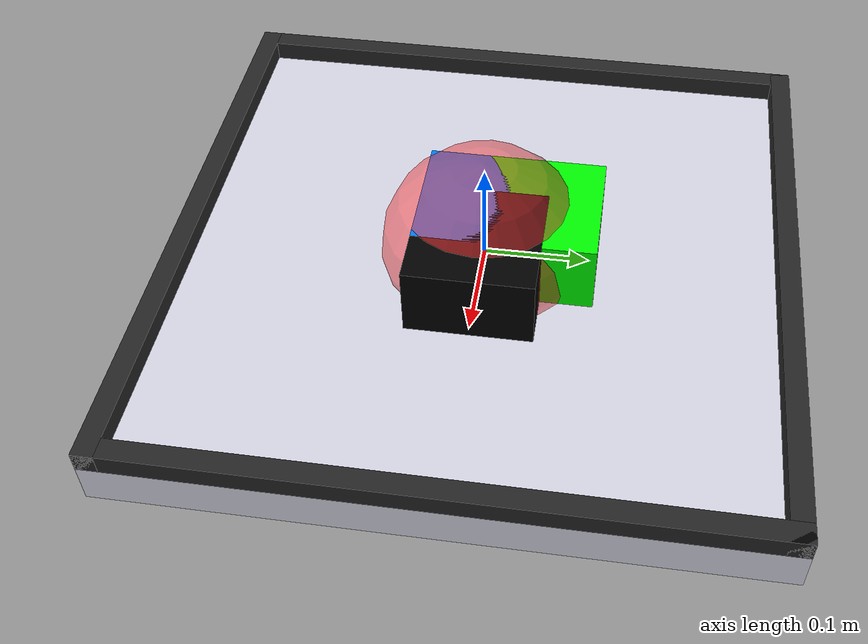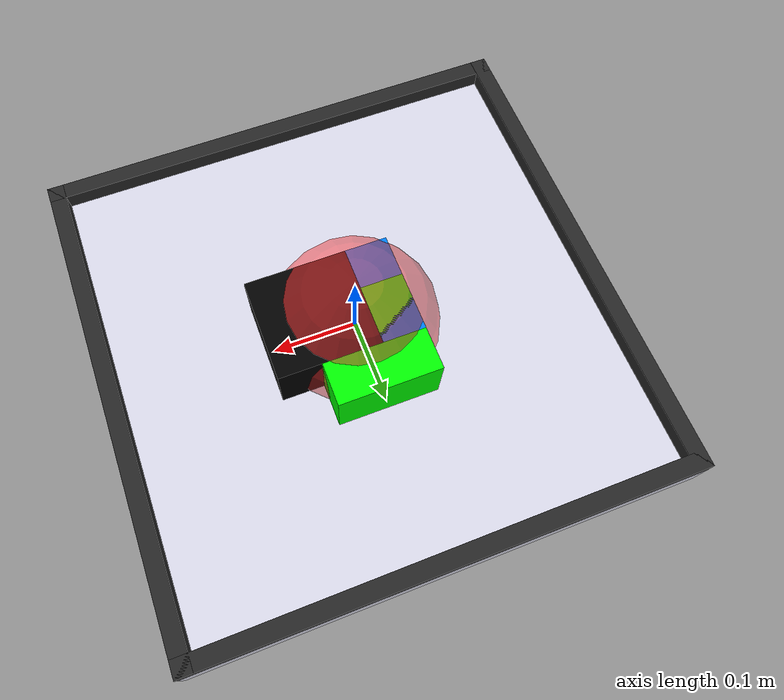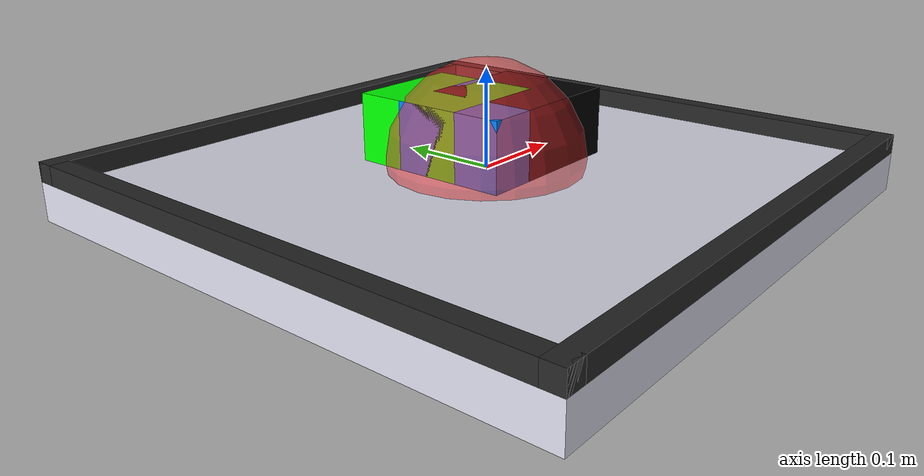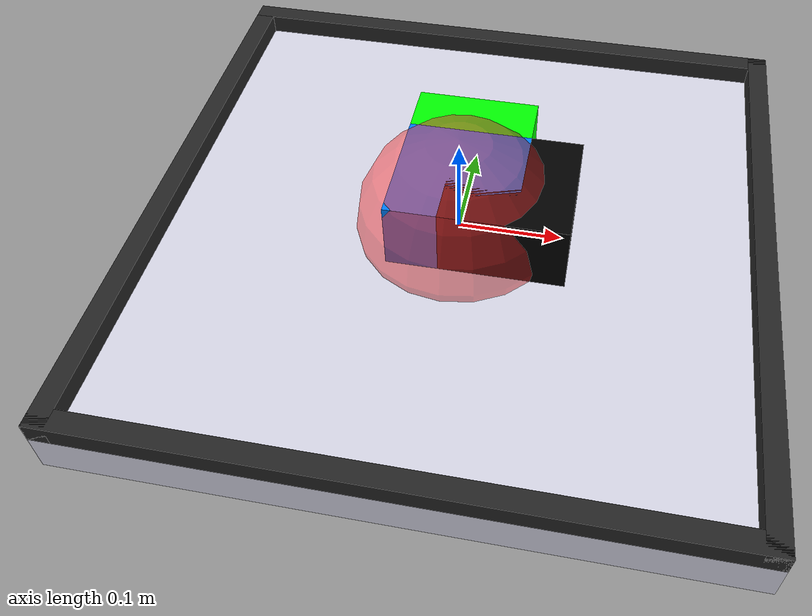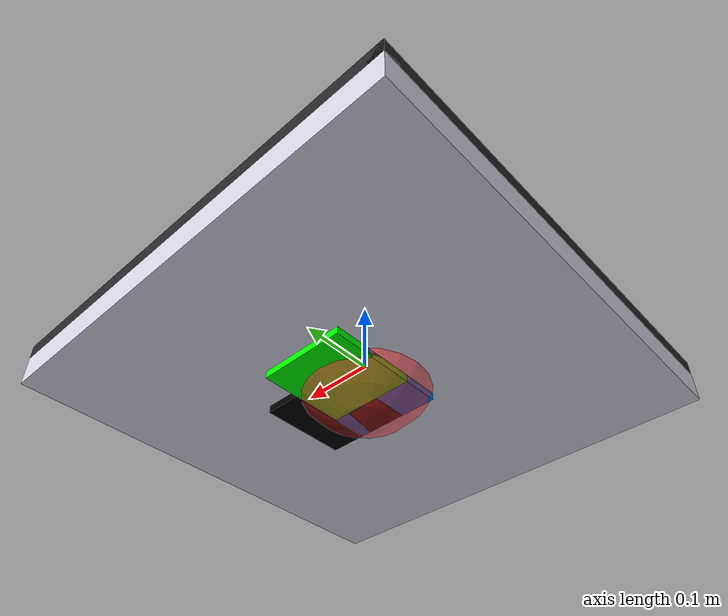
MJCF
<mujoco model="reacher">
    <compiler angle="radian" inertiafromgeom="true"/>
    <default>
        <joint armature="1" damping="1" limited="true"/>
        <geom contype="1" friction="1 0.1 0.1" rgba="0.7 0.7 0 1"/>
    </default>
    <option gravity="0 0 -9.81" integrator="RK4" timestep="0.01"/>
    <asset>
        <texture type="skybox" builtin="gradient" rgb1="0.9 0.7 0.9" rgb2="0.94 0.97 0.97" width="2" height="2"/>
    </asset>
    <worldbody>
        <include file="lighting.xml"/>
        <include file="bordered-arena.xml"/>
        <!-- Object -->
        <body name="object" pos="0 0 0.01">
            <geom rgba="0 0.5 1 1" type="box" size="0.06 0.06 0.06" density='0.00001' contype="1"/>
            <joint name="particle_x" type="slide" pos="0 0 0" axis="1 0 0" range="-0.3 0.3" damping="0.1"/>
            <joint name="particle_y" type="slide" pos="0 0 0" axis="0 1 0" range="-0.3 0.3" damping="0.1"/>
        </body>
        <body name="distractor_1" pos="0 0.05 0.01">
            <geom rgba="0 1 0 1" type="box" size="0.06 0.06 0.06" density='0.00001' contype="0" conaffinity="0"/>
            <joint name="distractor_1_x" type="slide" pos="0 0 0" axis="1 0 0" range="-0.3 0.3" damping="0.1"/>
            <joint name="distractor_1_y" type="slide" pos="0 0 0" axis="0 1 0" range="-0.3 0.3" damping="0.1"/>
        </body>
        <body name="distractor_2" pos="0 0 0.01">
            <geom rgba="1 0.5 0 1" type="box" size="0.06 0.06 0.06" density='0.00001' contype="0" conaffinity="0"/>
            <joint name="distractor_2_x" type="slide" pos="0 0 0" axis="1 0 0" range="-0.3 0.3" damping="0.1"/>
            <joint name="distractor_2_y" type="slide" pos="0 0 0" axis="0 1 0" range="-0.3 0.3" damping="0.1"/>
        </body>
        <body name="distractor_3" pos="0.05 0 0.01">
            <geom rgba="0 0 0 1" type="box" size="0.06 0.06 0.06" density='0.00001' contype="0" conaffinity="0"/>
            <joint name="distractor_3_x" type="slide" pos="0 0 0" axis="1 0 0" range="-0.3 0.3" damping="0.1"/>
            <joint name="distractor_3_y" type="slide" pos="0 0 0" axis="0 1 0" range="-0.3 0.3" damping="0.1"/>
        </body>
        <!-- Goal -->
        <body name="goal" pos="0 0 0.01">
            <geom rgba="1 0.2 0.2 0.5" type="sphere" size="0.1" density='0.00001' contype="0" conaffinity="0"/>
            <joint name="goal_x" type="slide" pos="0 0 0" axis="1 0 0" range="-0.3 0.3" damping="0.5"/>
            <joint name="goal_y" type="slide" pos="0 0 0" axis="0 1 0" range="-0.3 0.3" damping="0.5"/>
        </body>
    </worldbody>
    <actuator>
        <motor ctrllimited="true" ctrlrange="-1.0 1.0" gear="10.0" joint="particle_x"/>
        <motor ctrllimited="true" ctrlrange="-1.0 1.0" gear="10.0" joint="particle_y"/>
        <motor ctrllimited="true" ctrlrange="-0.1 0.1" gear="10.0" joint="distractor_1_x"/>
        <motor ctrllimited="true" ctrlrange="-0.1 0.1" gear="10.0" joint="distractor_1_y"/>
        <motor ctrllimited="true" ctrlrange="-0.1 0.1" gear="10.0" joint="distractor_2_x"/>
        <motor ctrllimited="true" ctrlrange="-0.1 0.1" gear="10.0" joint="distractor_2_y"/>
        <motor ctrllimited="true" ctrlrange="-0.1 0.1" gear="10.0" joint="distractor_3_x"/>
        <motor ctrllimited="true" ctrlrange="-0.1 0.1" gear="10.0" joint="distractor_3_y"/>
    </actuator>
</mujoco>

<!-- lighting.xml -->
<mujoco>
    <light directional="true" ambient="0.2 0.2 0.2" diffuse="0.8 0.8 0.8" specular="0.3 0.3 0.3"
           castshadow="false" pos="0.9 0.6 3" dir="-0.5 -0.5 -0.7" name="light0"/>
</mujoco>

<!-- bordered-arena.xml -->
<mujoco model="reacher">
    <!-- Arena -->
    <geom conaffinity="0" contype="0" name="ground" pos="0 0 -0.02" rgba="0.85 0.85 0.91 1" size="0.3 0.3 0.02"
          type="box"/>
    <geom conaffinity="1" name="sideN" rgba="0.15 0.15 0.15 1" size=".3 0.01 0.01" pos="0 .29 0.01" type="box"/>
    <geom conaffinity="1" name="sideS" rgba="0.15 0.15 0.15 1" size=".3 0.01 0.01" pos="0 -.29 0.01" type="box"/>
    <geom conaffinity="1" name="sideW" rgba="0.15 0.15 0.15 1" size="0.01 .3 0.01" pos="-.29 0 0.01" type="box"/>
    <geom conaffinity="1" name="sideE" rgba="0.15 0.15 0.15 1" size="0.01 .3 0.01" pos=".29 0 0.01" type="box"/>
</mujoco>
